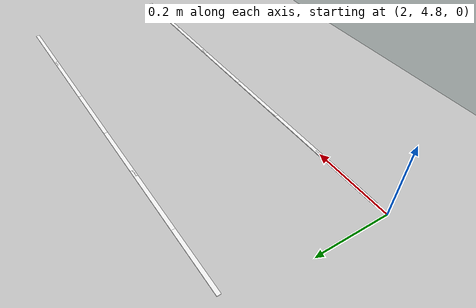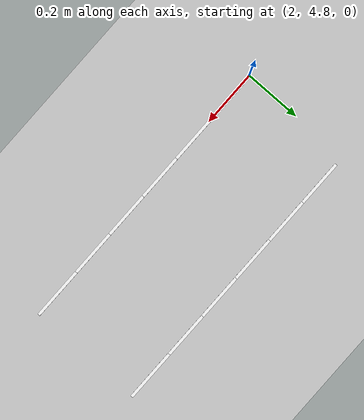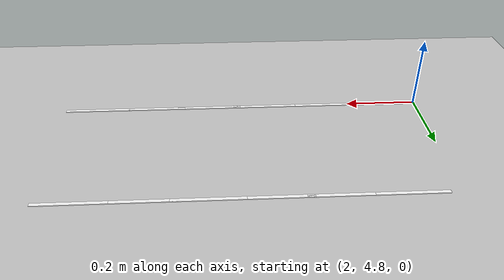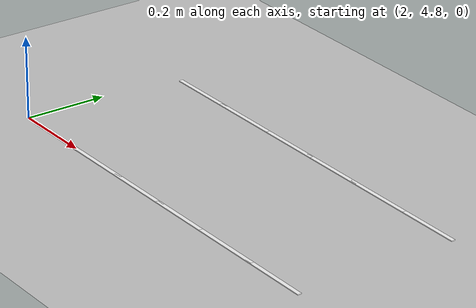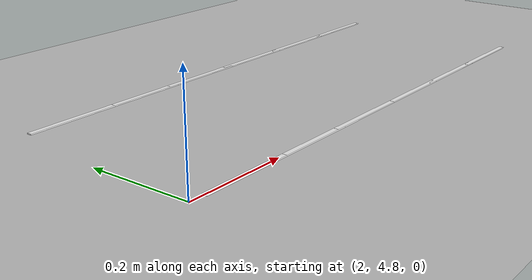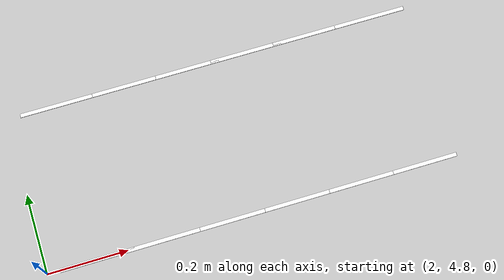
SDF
<sdf version="1.7">
 <world name="default">
  <model name="ground_plane">
   <static>1</static>
   <link name="link">
    <collision name="collision">
     <geometry><plane><normal>0 0 1</normal><size>100 100</size></plane></geometry>
     <surface>
      <contact><collide_bitmask>65535</collide_bitmask></contact>
      <friction><ode><mu>100</mu><mu2>50</mu2></ode></friction>
     </surface>
    </collision>
    <visual name="visual">
     <cast_shadows>0</cast_shadows>
     <geometry><plane><normal>0 0 1</normal><size>100 100</size></plane></geometry>
     <material>
      <script><uri>file://media/materials/scripts/gazebo.material</uri><name>Gazebo/Grey</name></script>
     </material>
    </visual>
   </link>
  </model>
  <model name="lane_line_left_206">
   <static>1</static>
   <link name="link">
    <pose>0 0 -0.004 0 -0 0</pose>
    <visual name="visual">
     <geometry><box><size>0.1833 0.01 0.01</size></box></geometry>
     <material><ambient>1 1 1 1</ambient><diffuse>1 1 1 1</diffuse></material>
    </visual>
    <collision name="collision"><geometry><box><size>0.1833 0.01 0.01</size></box></geometry></collision>
   </link>
   <pose>2.93878 4.8 0 0 -0 3.14159</pose>
  </model>
  <model name="lane_line_right_206">
   <static>1</static>
   <link name="link">
    <pose>0 0 -0.004 0 -0 0</pose>
    <visual name="visual">
     <geometry><box><size>0.1833 0.01 0.01</size></box></geometry>
     <material><ambient>1 1 1 1</ambient><diffuse>1 1 1 1</diffuse></material>
    </visual>
    <collision name="collision"><geometry><box><size>0.1833 0.01 0.01</size></box></geometry></collision>
   </link>
   <pose>2.93878 5.2 0 0 -0 3.14159</pose>
  </model>
  <model name="lane_line_left_207">
   <static>1</static>
   <link name="link">
    <pose>0 0 -0.004 0 -0 0</pose>
    <visual name="visual">
     <geometry><box><size>0.1833 0.01 0.01</size></box></geometry>
     <material><ambient>1 1 1 1</ambient><diffuse>1 1 1 1</diffuse></material>
    </visual>
    <collision name="collision"><geometry><box><size>0.1833 0.01 0.01</size></box></geometry></collision>
   </link>
   <pose>2.77551 4.8 0 0 -0 3.14159</pose>
  </model>
  <model name="lane_line_right_207">
   <static>1</static>
   <link name="link">
    <pose>0 0 -0.004 0 -0 0</pose>
    <visual name="visual">
     <geometry><box><size>0.1833 0.01 0.01</size></box></geometry>
     <material><ambient>1 1 1 1</ambient><diffuse>1 1 1 1</diffuse></material>
    </visual>
    <collision name="collision"><geometry><box><size>0.1833 0.01 0.01</size></box></geometry></collision>
   </link>
   <pose>2.77551 5.2 0 0 -0 3.14159</pose>
  </model>
  <model name="lane_line_left_208">
   <static>1</static>
   <link name="link">
    <pose>0 0 -0.004 0 -0 0</pose>
    <visual name="visual">
     <geometry><box><size>0.1833 0.01 0.01</size></box></geometry>
     <material><ambient>1 1 1 1</ambient><diffuse>1 1 1 1</diffuse></material>
    </visual>
    <collision name="collision"><geometry><box><size>0.1833 0.01 0.01</size></box></geometry></collision>
   </link>
   <pose>2.61224 4.8 0 0 -0 3.14159</pose>
  </model>
  <model name="lane_line_right_208">
   <static>1</static>
   <link name="link">
    <pose>0 0 -0.004 0 -0 0</pose>
    <visual name="visual">
     <geometry><box><size>0.1833 0.01 0.01</size></box></geometry>
     <material><ambient>1 1 1 1</ambient><diffuse>1 1 1 1</diffuse></material>
    </visual>
    <collision name="collision"><geometry><box><size>0.1833 0.01 0.01</size></box></geometry></collision>
   </link>
   <pose>2.61224 5.2 0 0 -0 3.14159</pose>
  </model>
  <model name="lane_line_left_209">
   <static>1</static>
   <link name="link">
    <pose>0 0 -0.004 0 -0 0</pose>
    <visual name="visual">
     <geometry><box><size>0.1833 0.01 0.01</size></box></geometry>
     <material><ambient>1 1 1 1</ambient><diffuse>1 1 1 1</diffuse></material>
    </visual>
    <collision name="collision"><geometry><box><size>0.1833 0.01 0.01</size></box></geometry></collision>
   </link>
   <pose>2.44898 4.8 0 0 -0 3.14159</pose>
  </model>
  <model name="lane_line_right_209">
   <static>1</static>
   <link name="link">
    <pose>0 0 -0.004 0 -0 0</pose>
    <visual name="visual">
     <geometry><box><size>0.1833 0.01 0.01</size></box></geometry>
     <material><ambient>1 1 1 1</ambient><diffuse>1 1 1 1</diffuse></material>
    </visual>
    <collision name="collision"><geometry><box><size>0.1833 0.01 0.01</size></box></geometry></collision>
   </link>
   <pose>2.44898 5.2 0 0 -0 3.14159</pose>
  </model>
  <model name="lane_line_left_210">
   <static>1</static>
   <link name="link">
    <pose>0 0 -0.004 0 -0 0</pose>
    <visual name="visual">
     <geometry><box><size>0.1833 0.01 0.01</size></box></geometry>
     <material><ambient>1 1 1 1</ambient><diffuse>1 1 1 1</diffuse></material>
    </visual>
    <collision name="collision"><geometry><box><size>0.1833 0.01 0.01</size></box></geometry></collision>
   </link>
   <pose>2.28571 4.8 0 0 -0 3.14159</pose>
  </model>
  <model name="lane_line_right_210">
   <static>1</static>
   <link name="link">
    <pose>0 0 -0.004 0 -0 0</pose>
    <visual name="visual">
     <geometry><box><size>0.1833 0.01 0.01</size></box></geometry>
     <material><ambient>1 1 1 1</ambient><diffuse>1 1 1 1</diffuse></material>
    </visual>
    <collision name="collision"><geometry><box><size>0.1833 0.01 0.01</size></box></geometry></collision>
   </link>
   <pose>2.28571 5.2 0 0 -0 3.14159</pose>
  </model>
  <model name="lane_line_left_211">
   <static>1</static>
   <link name="link">
    <pose>0 0 -0.004 0 -0 0</pose>
    <visual name="visual">
     <geometry><box><size>0.1833 0.01 0.01</size></box></geometry>
     <material><ambient>1 1 1 1</ambient><diffuse>1 1 1 1</diffuse></material>
    </visual>
    <collision name="collision"><geometry><box><size>0.1833 0.01 0.01</size></box></geometry></collision>
   </link>
   <pose>2.12245 4.8 0 0 -0 3.14159</pose>
  </model>
  <model name="lane_line_right_211">
   <static>1</static>
   <link name="link">
    <pose>0 0 -0.004 0 -0 0</pose>
    <visual name="visual">
     <geometry><box><size>0.1833 0.01 0.01</size></box></geometry>
     <material><ambient>1 1 1 1</ambient><diffuse>1 1 1 1</diffuse></material>
    </visual>
    <collision name="collision"><geometry><box><size>0.1833 0.01 0.01</size></box></geometry></collision>
   </link>
   <pose>2.12245 5.2 0 0 -0 3.14159</pose>
  </model>
 </world>
</sdf>
